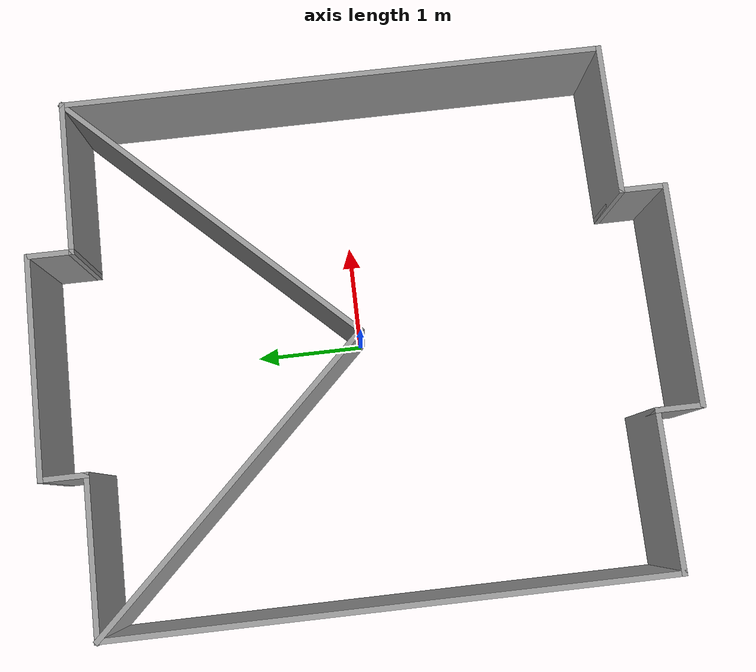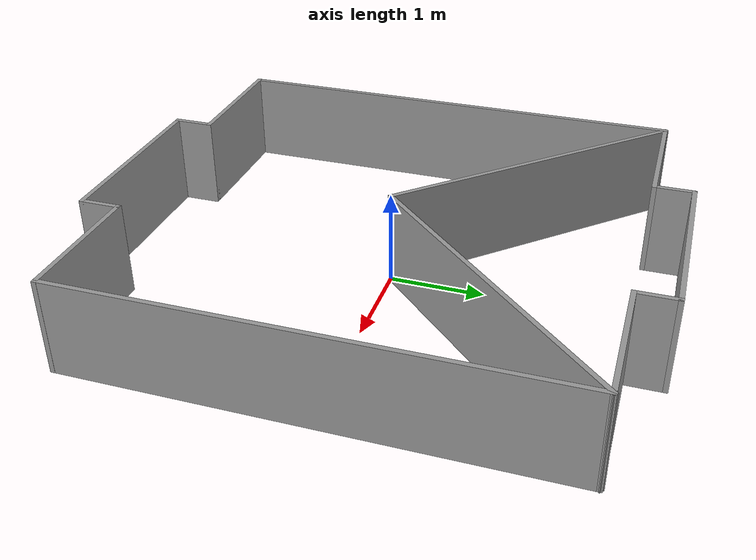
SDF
<?xml version='1.0'?>
<sdf version='1.6'>
  <model name='rgarena1'>
    <pose frame=''>0 0 0 0 -0 0</pose>
    <link name='Wall_0'>
      <collision name='Wall_0_Collision'>
        <geometry>
          <box>
            <size>5.05 0.05 1</size>
          </box>
        </geometry>
        <pose frame=''>0 0 0.5 0 -0 0</pose>
      </collision>
      <visual name='Wall_0_Visual'>
        <pose frame=''>0 0 0.5 0 -0 0</pose>
        <geometry>
          <box>
            <size>5.05 0.05 1</size>
          </box>
        </geometry>
        <material>
          <script>
            <uri>file://media/materials/scripts/gazebo.material</uri>
            <name>Gazebo/Grey</name>
          </script>
          <ambient>1 1 1 1</ambient>
        </material>
        <meta>
          <layer>0</layer>
        </meta>
      </visual>
      <pose frame=''>-2.4 0 0 0 -0 1.5708</pose>
    </link>
    <link name='Wall_14'>
      <collision name='Wall_14_Collision'>
        <geometry>
          <box>
            <size>1.45 0.05 1</size>
          </box>
        </geometry>
        <pose frame=''>0 0 0.5 0 -0 0</pose>
      </collision>
      <visual name='Wall_14_Visual'>
        <pose frame=''>0 0 0.5 0 -0 0</pose>
        <geometry>
          <box>
            <size>1.45 0.05 1</size>
          </box>
        </geometry>
        <material>
          <script>
            <uri>file://media/materials/scripts/gazebo.material</uri>
            <name>Gazebo/Grey</name>
          </script>
          <ambient>1 1 1 1</ambient>
        </material>
        <meta>
          <layer>0</layer>
        </meta>
      </visual>
      <pose frame=''>-1.7 -2.5 0 0 -0 0</pose>
    </link>
    <link name='Wall_16'>
      <collision name='Wall_16_Collision'>
        <geometry>
          <box>
            <size>0.45 0.05 1</size>
          </box>
        </geometry>
        <pose frame=''>0 0 0.5 0 -0 0</pose>
      </collision>
      <visual name='Wall_16_Visual'>
        <pose frame=''>0 0 0.5 0 -0 0</pose>
        <geometry>
          <box>
            <size>0.45 0.05 1</size>
          </box>
        </geometry>
        <material>
          <script>
            <uri>file://media/materials/scripts/gazebo.material</uri>
            <name>Gazebo/Grey</name>
          </script>
          <ambient>1 1 1 1</ambient>
        </material>
        <meta>
          <layer>0</layer>
        </meta>
      </visual>
      <pose frame=''>-1 -2.7 0 0 -0 -1.5708</pose>
    </link>
    <link name='Wall_18'>
      <collision name='Wall_18_Collision'>
        <geometry>
          <box>
            <size>2.065 0.05 1</size>
          </box>
        </geometry>
        <pose frame=''>0 0 0.5 0 -0 0</pose>
      </collision>
      <visual name='Wall_18_Visual'>
        <pose frame=''>0 0 0.5 0 -0 0</pose>
        <geometry>
          <box>
            <size>2.065 0.05 1</size>
          </box>
        </geometry>
        <material>
          <script>
            <uri>file://media/materials/scripts/gazebo.material</uri>
            <name>Gazebo/Grey</name>
          </script>
          <ambient>1 1 1 1</ambient>
        </material>
        <meta>
          <layer>0</layer>
        </meta>
      </visual>
      <pose frame=''>0.0075 -2.9 0 0 -0 0</pose>
    </link>
    <link name='Wall_19'>
      <collision name='Wall_19_Collision'>
        <geometry>
          <box>
            <size>0.45 0.05 1</size>
          </box>
        </geometry>
        <pose frame=''>0 0 0.5 0 -0 0</pose>
      </collision>
      <visual name='Wall_19_Visual'>
        <pose frame=''>0 0 0.5 0 -0 0</pose>
        <geometry>
          <box>
            <size>0.45 0.05 1</size>
          </box>
        </geometry>
        <material>
          <script>
            <uri>file://media/materials/scripts/gazebo.material</uri>
            <name>Gazebo/Grey</name>
          </script>
          <ambient>1 1 1 1</ambient>
        </material>
        <meta>
          <layer>0</layer>
        </meta>
      </visual>
      <pose frame=''>1.015 -2.7 0 0 -0 1.5708</pose>
    </link>
    <link name='Wall_20'>
      <collision name='Wall_20_Collision'>
        <geometry>
          <box>
            <size>1.4359 0.05 1</size>
          </box>
        </geometry>
        <pose frame=''>0 0 0.5 0 -0 0</pose>
      </collision>
      <visual name='Wall_20_Visual'>
        <pose frame=''>0 0 0.5 0 -0 0</pose>
        <geometry>
          <box>
            <size>1.4359 0.05 1</size>
          </box>
        </geometry>
        <material>
          <script>
            <uri>file://media/materials/scripts/gazebo.material</uri>
            <name>Gazebo/Grey</name>
          </script>
          <ambient>1 1 1 1</ambient>
        </material>
        <meta>
          <layer>0</layer>
        </meta>
      </visual>
      <pose frame=''>1.7075 -2.5 0 0 -0 0</pose>
    </link>
    <link name='Wall_23'>
      <collision name='Wall_23_Collision'>
        <geometry>
          <box>
            <size>5.05 0.05 1</size>
          </box>
        </geometry>
        <pose frame=''>0 0 0.5 0 -0 0</pose>
      </collision>
      <visual name='Wall_23_Visual'>
        <pose frame=''>0 0 0.5 0 -0 0</pose>
        <geometry>
          <box>
            <size>5.05 0.05 1</size>
          </box>
        </geometry>
        <material>
          <script>
            <uri>file://media/materials/scripts/gazebo.material</uri>
            <name>Gazebo/Grey</name>
          </script>
          <ambient>1 1 1 1</ambient>
        </material>
        <meta>
          <layer>0</layer>
        </meta>
      </visual>
      <pose frame=''>2.4 0 0 0 -0 1.5708</pose>
    </link>
    <link name='Wall_25'>
      <collision name='Wall_25_Collision'>
        <geometry>
          <box>
            <size>1.45 0.05 1</size>
          </box>
        </geometry>
        <pose frame=''>0 0 0.5 0 -0 0</pose>
      </collision>
      <visual name='Wall_25_Visual'>
        <pose frame=''>0 0 0.5 0 -0 0</pose>
        <geometry>
          <box>
            <size>1.45 0.05 1</size>
          </box>
        </geometry>
        <material>
          <script>
            <uri>file://media/materials/scripts/gazebo.material</uri>
            <name>Gazebo/Grey</name>
          </script>
          <ambient>1 1 1 1</ambient>
        </material>
        <meta>
          <layer>0</layer>
        </meta>
      </visual>
      <pose frame=''>1.7 2.5 0 0 -0 3.14159</pose>
    </link>
    <link name='Wall_28'>
      <collision name='Wall_28_Collision'>
        <geometry>
          <box>
            <size>0.45 0.05 1</size>
          </box>
        </geometry>
        <pose frame=''>0 0 0.5 0 -0 0</pose>
      </collision>
      <visual name='Wall_28_Visual'>
        <pose frame=''>0 0 0.5 0 -0 0</pose>
        <geometry>
          <box>
            <size>0.45 0.05 1</size>
          </box>
        </geometry>
        <material>
          <script>
            <uri>file://media/materials/scripts/gazebo.material</uri>
            <name>Gazebo/Grey</name>
          </script>
          <ambient>1 1 1 1</ambient>
        </material>
        <meta>
          <layer>0</layer>
        </meta>
      </visual>
      <pose frame=''>1 2.7 0 0 -0 1.5708</pose>
    </link>
    <link name='Wall_29'>
      <collision name='Wall_29_Collision'>
        <geometry>
          <box>
            <size>2.05 0.05 1</size>
          </box>
        </geometry>
        <pose frame=''>0 0 0.5 0 -0 0</pose>
      </collision>
      <visual name='Wall_29_Visual'>
        <pose frame=''>0 0 0.5 0 -0 0</pose>
        <geometry>
          <box>
            <size>2.05 0.05 1</size>
          </box>
        </geometry>
        <material>
          <script>
            <uri>file://media/materials/scripts/gazebo.material</uri>
            <name>Gazebo/Grey</name>
          </script>
          <ambient>1 1 1 1</ambient>
        </material>
        <meta>
          <layer>0</layer>
        </meta>
      </visual>
      <pose frame=''>0 2.9 0 0 -0 3.14159</pose>
    </link>
    <link name='Wall_30'>
      <collision name='Wall_30_Collision'>
        <geometry>
          <box>
            <size>0.45 0.05 1</size>
          </box>
        </geometry>
        <pose frame=''>0 0 0.5 0 -0 0</pose>
      </collision>
      <visual name='Wall_30_Visual'>
        <pose frame=''>0 0 0.5 0 -0 0</pose>
        <geometry>
          <box>
            <size>0.45 0.05 1</size>
          </box>
        </geometry>
        <material>
          <script>
            <uri>file://media/materials/scripts/gazebo.material</uri>
            <name>Gazebo/Grey</name>
          </script>
          <ambient>1 1 1 1</ambient>
        </material>
        <meta>
          <layer>0</layer>
        </meta>
      </visual>
      <pose frame=''>-1 2.7 0 0 -0 -1.5708</pose>
    </link>
    <link name='Wall_31'>
      <collision name='Wall_31_Collision'>
        <geometry>
          <box>
            <size>1.45 0.05 1</size>
          </box>
        </geometry>
        <pose frame=''>0 0 0.5 0 -0 0</pose>
      </collision>
      <visual name='Wall_31_Visual'>
        <pose frame=''>0 0 0.5 0 -0 0</pose>
        <geometry>
          <box>
            <size>1.45 0.05 1</size>
          </box>
        </geometry>
        <material>
          <script>
            <uri>file://media/materials/scripts/gazebo.material</uri>
            <name>Gazebo/Grey</name>
          </script>
          <ambient>1 1 1 1</ambient>
        </material>
        <meta>
          <layer>0</layer>
        </meta>
      </visual>
      <pose frame=''>-1.7 2.5 0 0 -0 3.14159</pose>
    </link>
    <link name='Wall_33'>
      <collision name='Wall_33_Collision'>
        <geometry>
          <box>
            <size>3.51554 0.05 1</size>
          </box>
        </geometry>
        <pose frame=''>0 0 0.5 0 -0 0</pose>
      </collision>
      <visual name='Wall_33_Visual'>
        <pose frame=''>0 0 0.5 0 -0 0</pose>
        <geometry>
          <box>
            <size>3.51554 0.05 1</size>
          </box>
        </geometry>
        <material>
          <script>
            <uri>file://media/materials/scripts/gazebo.material</uri>
            <name>Gazebo/Grey</name>
          </script>
          <ambient>1 1 1 1</ambient>
        </material>
        <meta>
          <layer>0</layer>
        </meta>
      </visual>
      <pose frame=''>-1.2 1.25 0 0 -0 -0.805804</pose>
    </link>
    <link name='Wall_34'>
      <collision name='Wall_34_Collision'>
        <geometry>
          <box>
            <size>3.51554 0.05 1</size>
          </box>
        </geometry>
        <pose frame=''>0 0 0.5 0 -0 0</pose>
      </collision>
      <visual name='Wall_34_Visual'>
        <pose frame=''>0 0 0.5 0 -0 0</pose>
        <geometry>
          <box>
            <size>3.51554 0.05 1</size>
          </box>
        </geometry>
        <material>
          <script>
            <uri>file://media/materials/scripts/gazebo.material</uri>
            <name>Gazebo/Grey</name>
          </script>
          <ambient>1 1 1 1</ambient>
        </material>
        <meta>
          <layer>0</layer>
        </meta>
      </visual>
      <pose frame=''>1.2 1.25 0 0 -0 0.805804</pose>
    </link>
    <static>1</static>
  </model>
</sdf>
